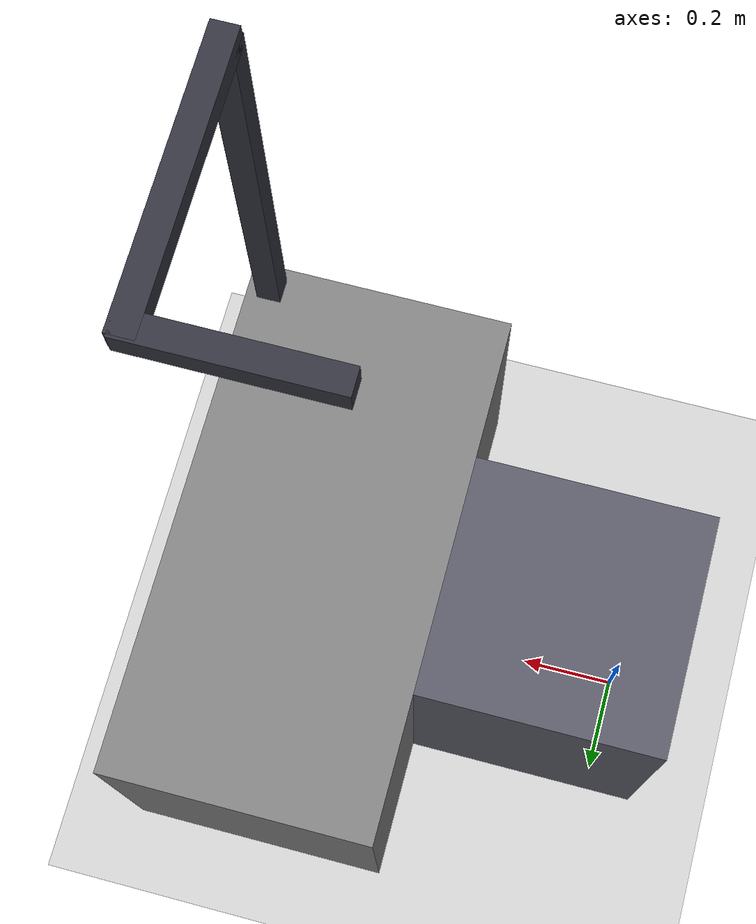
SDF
<?xml version="1.0" ?>
<sdf version="1.9">
  <world name="pick_and_place_world">

    <!-- Physics -->
    <physics name="2ms" type="ignored">
      <max_step_size>0.002</max_step_size>
      <real_time_factor>0</real_time_factor>
      <real_time_update_rate>0</real_time_update_rate>
    </physics>

    <!-- Plugins -->
    <plugin filename="gz-sim-physics-system" name="gz::sim::systems::Physics"/>
    <plugin filename="gz-sim-user-commands-system" name="gz::sim::systems::UserCommands"/>
    <plugin filename="gz-sim-scene-broadcaster-system" name="gz::sim::systems::SceneBroadcaster"/>
    <plugin filename="gz-sim-sensors-system" name="gz::sim::systems::Sensors">
      <render_engine>ogre2</render_engine>
    </plugin>

    <!-- Işık -->
    <light type="directional" name="sun">
      <cast_shadows>true</cast_shadows>
      <pose>0 0 10 0 0 0</pose>
      <diffuse>0.8 0.8 0.8 1</diffuse>
    </light>

    <!-- Zemin -->
    <model name="ground_plane">
      <static>true</static>
      <link name="link">
        <collision name="collision">
          <geometry><plane><normal>0 0 1</normal></plane></geometry>
        </collision>
        <visual name="visual">
          <geometry><plane><normal>0 0 1</normal><size>20 20</size></plane></geometry>
          <material><ambient>0.8 0.8 0.8 1</ambient></material>
        </visual>
      </link>
    </model>

    <model name="robot_base_table">
      <static>true</static>
      <pose>0.15 0 0.3 0 0 0</pose>
      <link name="link">
        <collision name="collision">
          <geometry><box><size>0.5 0.5 0.6</size></box></geometry>
        </collision>
        <visual name="visual">
          <geometry><box><size>0.5 0.5 0.6</size></box></geometry>
          <material>
            <ambient>0.25 0.25 0.28 1</ambient>
            <diffuse>0.35 0.35 0.40 1</diffuse>
          </material>
        </visual>
      </link>
    </model>

    <!-- Çalışma Tezgahı : robot masasından 15 cm boşlukla. Üst z=0.6.
         Footprint x[0.40,0.95] (merkez 0.675, derinlik 0.55), y[-0.55,0.55] (genişlik 1.10). -->
    <model name="work_table">
      <static>true</static>
      <pose>0.675 0 0.3 0 0 0</pose>
      <link name="link">
        <collision name="collision">
          <geometry><box><size>0.55 1.1 0.6</size></box></geometry>
        </collision>
        <visual name="visual">
          <geometry><box><size>0.55 1.1 0.6</size></box></geometry>
          <material>
            <ambient>0.3 0.3 0.3 1</ambient>
            <diffuse>0.5 0.5 0.5 1</diffuse>
          </material>
        </visual>
      </link>
    </model>

    <model name="camera_stand">
      <static>true</static>
      <pose>0 0 0 0 0 0</pose>
      <link name="link">
        <!-- Dikey direk: work_table köşesinde (0.90,-0.50), masaya basar, z 0.60→1.50 -->
        <visual name="post">
          <pose>0.90 -0.50 1.05 0 0 0</pose>
          <geometry><box><size>0.05 0.05 0.90</size></box></geometry>
          <material>
            <ambient>0.15 0.15 0.18 1</ambient>
            <diffuse>0.2 0.2 0.25 1</diffuse>
          </material>
        </visual>
        <collision name="post_col">
          <pose>0.90 -0.50 1.05 0 0 0</pose>
          <geometry><box><size>0.05 0.05 0.90</size></box></geometry>
        </collision>
        <!-- BOOM segment A (post tepesinden +y boyunca köşeye): VISUAL-ONLY -->
        <visual name="boom_y">
          <pose>0.90 -0.25 1.50 0 0 0</pose>
          <geometry><box><size>0.05 0.54 0.05</size></box></geometry>
          <material>
            <ambient>0.15 0.15 0.18 1</ambient>
            <diffuse>0.2 0.2 0.25 1</diffuse>
          </material>
        </visual>
        <!-- BOOM segment B (köşeden -x boyunca kameranın altına 0.6,0,1.5): VISUAL-ONLY -->
        <visual name="boom_x">
          <pose>0.735 0.0 1.50 0 0 0</pose>
          <geometry><box><size>0.37 0.05 0.05</size></box></geometry>
          <material>
            <ambient>0.15 0.15 0.18 1</ambient>
            <diffuse>0.2 0.2 0.25 1</diffuse>
          </material>
        </visual>
      </link>
    </model>

  </world>
</sdf>
